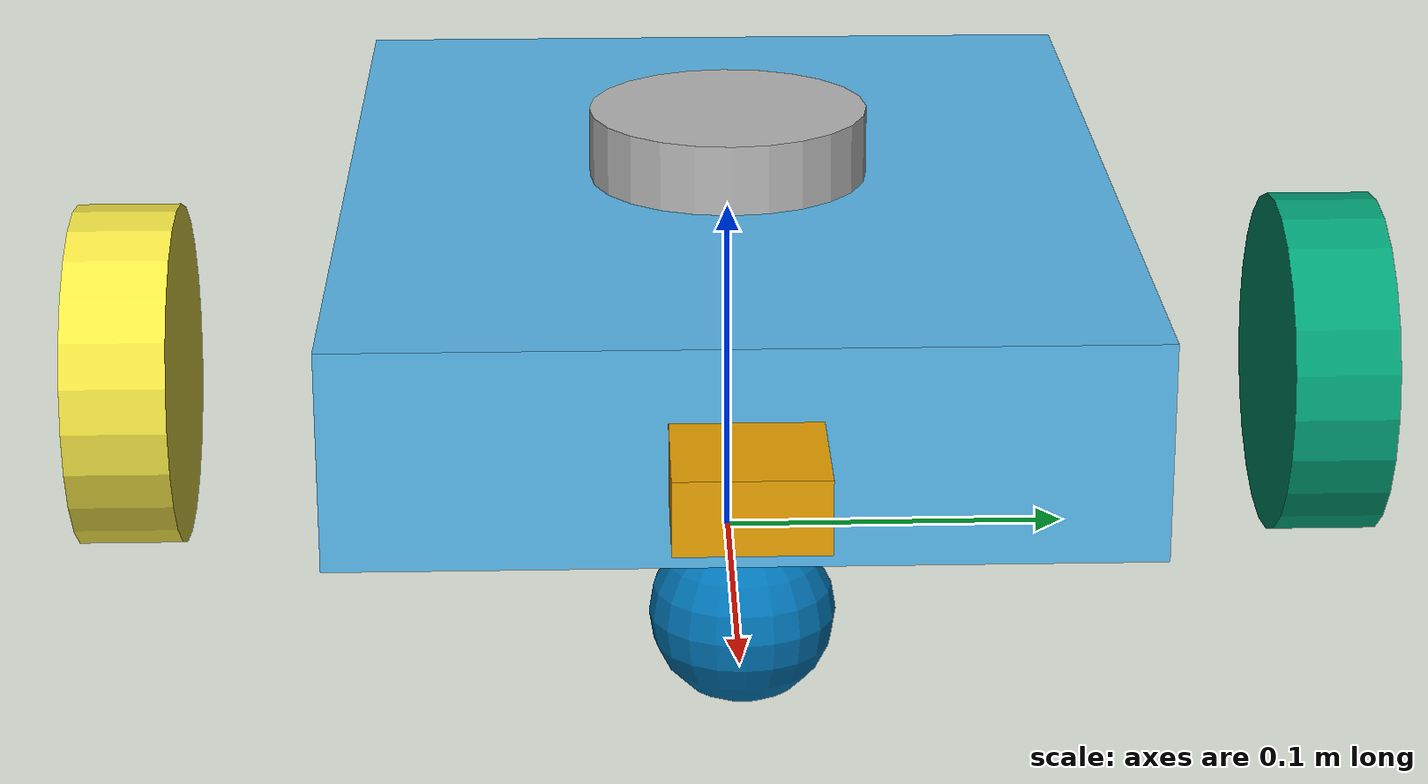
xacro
<?xml version="1.0"?>
<robot name="rm_robot" xmlns:xacro="http://www.ros.org/wiki/xacro">

  <!-- Macros de inércia (arquivo que o professor passou) -->
  <xacro:include filename="$(find rm_description)/urdf/inertial_macros.xacro"/>

  <!-- Rodas primeiro: define wheel_radius / wheel_length e a macro wheel_link -->
  <xacro:include filename="$(find rm_description)/urdf/wheels.xacro"/>

  <!-- DIMENSÕES DO ROBÔ     -->
  <xacro:property name="chassis_length" value="0.30"/>
  <xacro:property name="chassis_width"  value="0.22"/>
  <xacro:property name="chassis_height" value="0.06"/>
  <xacro:property name="chassis_mass"   value="3.0"/>

  <!-- Distância entre rodas (usada no URDF e no DiffDrive) -->
  <xacro:property name="wheel_sep" value="0.35"/>

  <!-- Sensores e controle depois das propriedades -->
  <xacro:include filename="$(find rm_description)/urdf/sensors.xacro"/>
  <xacro:include filename="$(find rm_description)/urdf/gazebo_control.xacro"/>

  <!-- FRAMES PRINCIPAIS     -->

  <!-- base_footprint: no chão, vazio -->
  <link name="base_footprint"/>

  <!-- base_link: chassi -->
  <link name="base_link">
    <visual>
      <origin xyz="0 0 ${chassis_height/2}" rpy="0 0 0"/>
      <geometry>
        <box size="${chassis_length} ${chassis_width} ${chassis_height}"/>
      </geometry>
    </visual>

    <collision>
      <origin xyz="0 0 ${chassis_height/2}" rpy="0 0 0"/>
      <geometry>
        <box size="${chassis_length} ${chassis_width} ${chassis_height}"/>
      </geometry>
    </collision>

    <xacro:inertial_box mass="${chassis_mass}"
                        x="${chassis_length}" y="${chassis_width}" z="${chassis_height}">
      <origin xyz="0 0 ${chassis_height/2}" rpy="0 0 0"/>
    </xacro:inertial_box>
  </link>

  <!-- base_link na altura do eixo das rodas: z = wheel_radius -->
  <joint name="base_joint" type="fixed">
    <parent link="base_footprint"/>
    <child link="base_link"/>
    <origin xyz="0 0 ${wheel_radius}" rpy="0 0 0"/>
  </joint>

  <!-- RODAS                 -->
  <xacro:wheel_link name="left_wheel"  mass="0.3"/>
  <xacro:wheel_link name="right_wheel" mass="0.3"/>

  <joint name="left_wheel_joint" type="continuous">
    <parent link="base_link"/>
    <child link="left_wheel"/>
    <origin xyz="0 ${wheel_sep/2} 0" rpy="0 0 0"/>
    <axis xyz="0 1 0"/>
  </joint>

  <joint name="right_wheel_joint" type="continuous">
    <parent link="base_link"/>
    <child link="right_wheel"/>
    <origin xyz="0 ${-wheel_sep/2} 0" rpy="0 0 0"/>
    <axis xyz="0 1 0"/>
  </joint>

  <!-- CASTER BALLS          -->
  <xacro:property name="caster_radius" value="0.025"/>

  <link name="front_caster_ball">
    <visual>
      <origin xyz="0 0 0" rpy="0 0 0"/>
      <geometry>
        <sphere radius="${caster_radius}"/>
      </geometry>
    </visual>
    <collision>
      <origin xyz="0 0 0" rpy="0 0 0"/>
      <geometry>
        <sphere radius="${caster_radius}"/>
      </geometry>
    </collision>
    <xacro:inertial_sphere mass="0.03" radius="${caster_radius}">
      <origin xyz="0 0 0" rpy="0 0 0"/>
    </xacro:inertial_sphere>
  </link>

  <joint name="front_caster_joint" type="fixed">
    <parent link="base_link"/>
    <child link="front_caster_ball"/>
    <origin xyz="0.12 0 ${-wheel_radius + caster_radius}" rpy="0 0 0"/>
  </joint>

  <link name="rear_caster_ball">
    <visual>
      <origin xyz="0 0 0" rpy="0 0 0"/>
      <geometry>
        <sphere radius="${caster_radius}"/>
      </geometry>
    </visual>
    <collision>
      <origin xyz="0 0 0" rpy="0 0 0"/>
      <geometry>
        <sphere radius="${caster_radius}"/>
      </geometry>
    </collision>
    <xacro:inertial_sphere mass="0.03" radius="${caster_radius}">
      <origin xyz="0 0 0" rpy="0 0 0"/>
    </xacro:inertial_sphere>
  </link>

  <joint name="rear_caster_joint" type="fixed">
    <parent link="base_link"/>
    <child link="rear_caster_ball"/>
    <origin xyz="-0.12 0 ${-wheel_radius + caster_radius}" rpy="0 0 0"/>
  </joint>

  <!-- IMU (link vazio)      -->
  <link name="imu"/>
  <joint name="imu_joint" type="fixed">
    <parent link="base_link"/>
    <child link="imu"/>
    <origin xyz="0 0 0" rpy="0 0 0"/>
  </joint>

  <!-- LiDAR                 -->
  <xacro:property name="lidar_radius" value="0.04"/>
  <xacro:property name="lidar_height" value="0.02"/>

  <link name="lidar">
    <visual>
      <origin xyz="0 0 0" rpy="0 0 0"/>
      <geometry>
        <cylinder radius="${lidar_radius}" length="${lidar_height}"/>
      </geometry>
    </visual>

    <collision>
      <origin xyz="0 0 0" rpy="0 0 0"/>
      <geometry>
        <cylinder radius="${lidar_radius}" length="${lidar_height}"/>
      </geometry>
    </collision>

    <xacro:inertial_cylinder mass="0.2" length="${lidar_height}" radius="${lidar_radius}">
      <origin xyz="0 0 0" rpy="0 0 0"/>
    </xacro:inertial_cylinder>
  </link>

  <joint name="lidar_joint" type="fixed">
    <parent link="base_link"/>
    <child link="lidar"/>
    <origin xyz="0 0 ${chassis_height + lidar_height/2}" rpy="0 0 0"/>
  </joint>

  <!-- CÂMERA                -->
  <link name="camera">
    <visual>
      <origin xyz="0 0 0" rpy="0 0 0"/>
      <geometry>
        <box size="0.04 0.04 0.02"/>
      </geometry>
    </visual>

    <collision>
      <origin xyz="0 0 0" rpy="0 0 0"/>
      <geometry>
        <box size="0.04 0.04 0.02"/>
      </geometry>
    </collision>

    <xacro:inertial_box mass="0.1" x="0.04" y="0.04" z="0.02">
      <origin xyz="0 0 0" rpy="0 0 0"/>
    </xacro:inertial_box>
  </link>

  <joint name="camera_joint" type="fixed">
    <parent link="base_link"/>
    <child link="camera"/>
    <origin xyz="${chassis_length/2 + 0.02} 0 ${chassis_height/2}" rpy="0 0 0"/>
  </joint>

</robot>

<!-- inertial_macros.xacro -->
<robot xmlns:xacro="http://www.ros.org/wiki/xacro">

  <!-- Inércia de caixa -->
  <xacro:macro name="inertial_box" params="mass x y z *origin">
    <inertial>
      <xacro:insert_block name="origin"/>
      <mass value="${mass}"/>
      <inertia
        ixx="${(1.0/12.0)*mass*(y*y + z*z)}"
        iyy="${(1.0/12.0)*mass*(x*x + z*z)}"
        izz="${(1.0/12.0)*mass*(x*x + y*y)}"
        ixy="0.0" ixz="0.0" iyz="0.0"/>
    </inertial>
  </xacro:macro>

  <!-- Inércia de cilindro (eixo principal ao longo de Z no frame local) -->
  <xacro:macro name="inertial_cylinder" params="mass length radius *origin">
    <inertial>
      <xacro:insert_block name="origin"/>
      <mass value="${mass}"/>
      <inertia
        ixx="${(1.0/12.0)*mass*(3*radius*radius + length*length)}"
        iyy="${(1.0/12.0)*mass*(3*radius*radius + length*length)}"
        izz="${0.5*mass*radius*radius}"
        ixy="0.0" ixz="0.0" iyz="0.0"/>
    </inertial>
  </xacro:macro>

  <!-- Inércia de esfera -->
  <xacro:macro name="inertial_sphere" params="mass radius *origin">
    <inertial>
      <xacro:insert_block name="origin"/>
      <mass value="${mass}"/>
      <inertia
        ixx="${(2.0/5.0)*mass*radius*radius}"
        iyy="${(2.0/5.0)*mass*radius*radius}"
        izz="${(2.0/5.0)*mass*radius*radius}"
        ixy="0.0" ixz="0.0" iyz="0.0"/>
    </inertial>
  </xacro:macro>

</robot>

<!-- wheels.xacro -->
<robot xmlns:xacro="http://www.ros.org/wiki/xacro">

  <!-- Variáveis reutilizáveis (requisito do APS) -->
  <xacro:property name="wheel_radius" value="0.05"/>
  <xacro:property name="wheel_length" value="0.03"/>

  <!-- Macro reutilizável da roda -->
  <xacro:macro name="wheel_link" params="name mass">
    <link name="${name}">
      <visual>
        <!-- Rotaciona o cilindro para ficar com o eixo ao longo de Y (como roda) -->
        <origin xyz="0 0 0" rpy="1.5708 0 0"/>
        <geometry>
          <cylinder radius="${wheel_radius}" length="${wheel_length}"/>
        </geometry>
      </visual>

      <collision>
        <origin xyz="0 0 0" rpy="1.5708 0 0"/>
        <geometry>
          <cylinder radius="${wheel_radius}" length="${wheel_length}"/>
        </geometry>
      </collision>

      <!-- Inércia via macro do inertial_macros.xacro -->
      <xacro:inertial_cylinder mass="${mass}" length="${wheel_length}" radius="${wheel_radius}">
        <origin xyz="0 0 0" rpy="0 0 0"/>
      </xacro:inertial_cylinder>
    </link>
  </xacro:macro>

</robot>
